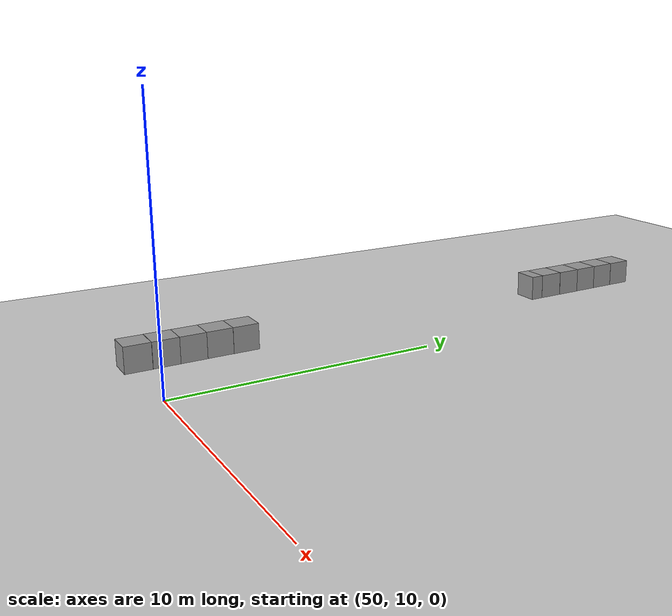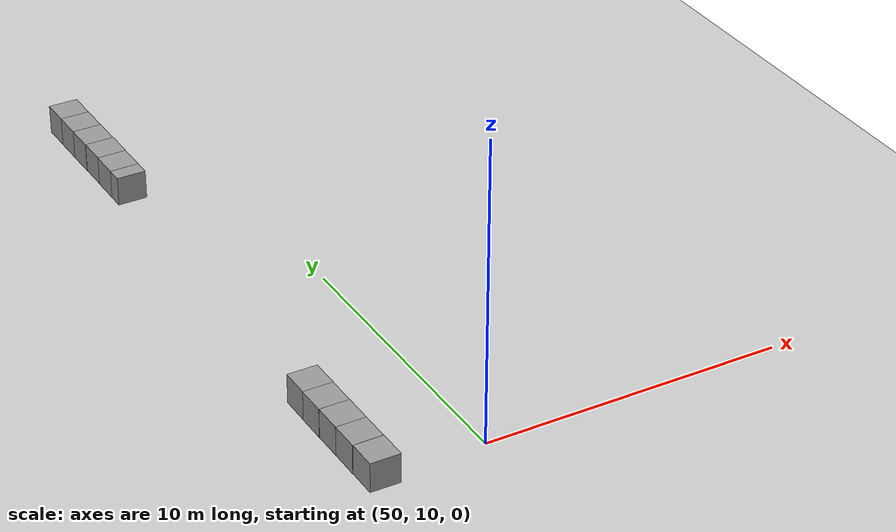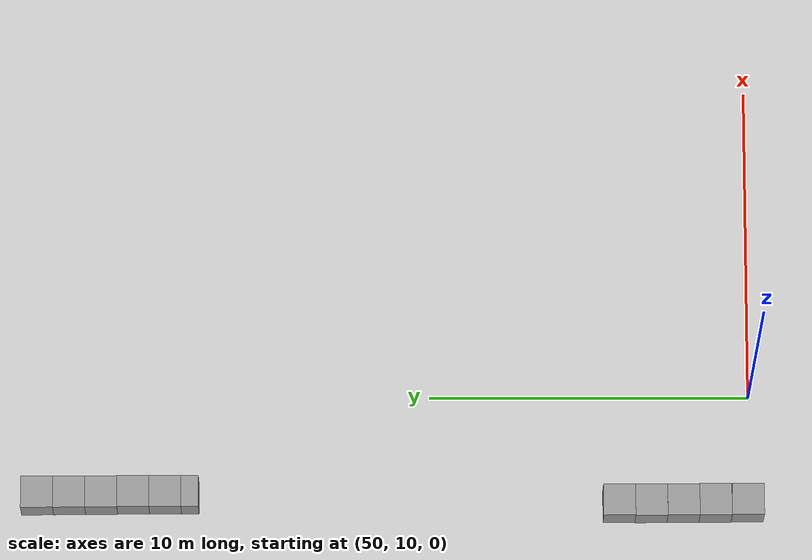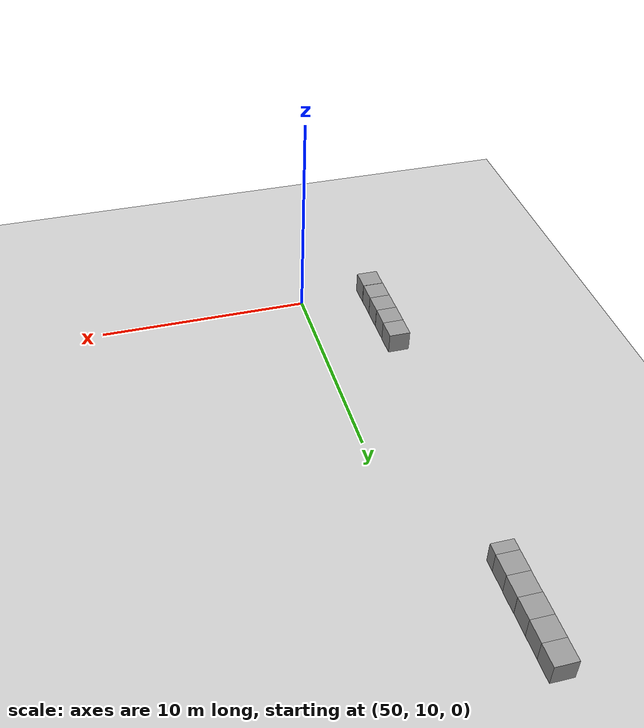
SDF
<sdf version="1.7">
 <world name="default">
  <model name="ground_plane">
   <static>1</static>
   <link name="link">
    <collision name="collision">
     <geometry><plane><normal>0 0 1</normal><size>100 100</size></plane></geometry>
     <surface>
      <contact><collide_bitmask>65535</collide_bitmask></contact>
      <friction><ode><mu>100</mu><mu2>50</mu2></ode></friction>
     </surface>
    </collision>
    <visual name="visual">
     <cast_shadows>0</cast_shadows>
     <geometry><plane><normal>0 0 1</normal><size>100 100</size></plane></geometry>
     <material>
      <script><uri>file://media/materials/scripts/gazebo.material</uri><name>Gazebo/Grey</name></script>
     </material>
    </visual>
   </link>
  </model>
  <model name="unit_box_13">
   <pose>46.717 32.2491 0.499995 0 1e-05 0.007913</pose>
   <link name="link">
    <inertial>
     <mass>1</mass>
     <inertia>
      <ixx>0.166667</ixx>
      <ixy>0</ixy>
      <ixz>0</ixz>
      <iyy>0.166667</iyy>
      <iyz>0</iyz>
      <izz>0.166667</izz>
     </inertia>
    </inertial>
    <collision name="collision"><geometry><box><size>1 1 1</size></box></geometry></collision>
    <visual name="visual">
     <geometry><box><size>1 1 1</size></box></geometry>
     <material>
      <script><name>Gazebo/Grey</name><uri>file://media/materials/scripts/gazebo.material</uri></script>
     </material>
    </visual>
   </link>
  </model>
  <model name="unit_box_14">
   <pose>46.7218 31.2491 0.5 0 -0 0.007911</pose>
   <link name="link">
    <inertial>
     <mass>1</mass>
     <inertia>
      <ixx>0.166667</ixx>
      <ixy>0</ixy>
      <ixz>0</ixz>
      <iyy>0.166667</iyy>
      <iyz>0</iyz>
      <izz>0.166667</izz>
     </inertia>
    </inertial>
    <collision name="collision"><geometry><box><size>1 1 1</size></box></geometry></collision>
    <visual name="visual">
     <geometry><box><size>1 1 1</size></box></geometry>
     <material>
      <script><name>Gazebo/Grey</name><uri>file://media/materials/scripts/gazebo.material</uri></script>
     </material>
    </visual>
   </link>
  </model>
  <model name="unit_box_15">
   <pose>46.7287 30.2491 0.5 0 -0 0.007911</pose>
   <link name="link">
    <inertial>
     <mass>1</mass>
     <inertia>
      <ixx>0.166667</ixx>
      <ixy>0</ixy>
      <ixz>0</ixz>
      <iyy>0.166667</iyy>
      <iyz>0</iyz>
      <izz>0.166667</izz>
     </inertia>
    </inertial>
    <collision name="collision"><geometry><box><size>1 1 1</size></box></geometry></collision>
    <visual name="visual">
     <geometry><box><size>1 1 1</size></box></geometry>
     <material>
      <script><name>Gazebo/Grey</name><uri>file://media/materials/scripts/gazebo.material</uri></script>
     </material>
    </visual>
   </link>
  </model>
  <model name="unit_box_16">
   <pose>46.7446 29.2492 0.499995 -0 1e-05 0.007912</pose>
   <link name="link">
    <inertial>
     <mass>1</mass>
     <inertia>
      <ixx>0.166667</ixx>
      <ixy>0</ixy>
      <ixz>0</ixz>
      <iyy>0.166667</iyy>
      <iyz>0</iyz>
      <izz>0.166667</izz>
     </inertia>
    </inertial>
    <collision name="collision"><geometry><box><size>1 1 1</size></box></geometry></collision>
    <visual name="visual">
     <geometry><box><size>1 1 1</size></box></geometry>
     <material>
      <script><name>Gazebo/Grey</name><uri>file://media/materials/scripts/gazebo.material</uri></script>
     </material>
    </visual>
   </link>
  </model>
  <model name="unit_box_17">
   <pose>46.7436 28.2492 0.499996 -5e-06 2e-06 0.007893</pose>
   <link name="link">
    <inertial>
     <mass>1</mass>
     <inertia>
      <ixx>0.166667</ixx>
      <ixy>0</ixy>
      <ixz>0</ixz>
      <iyy>0.166667</iyy>
      <iyz>0</iyz>
      <izz>0.166667</izz>
     </inertia>
    </inertial>
    <collision name="collision"><geometry><box><size>1 1 1</size></box></geometry></collision>
    <visual name="visual">
     <geometry><box><size>1 1 1</size></box></geometry>
     <material>
      <script><name>Gazebo/Grey</name><uri>file://media/materials/scripts/gazebo.material</uri></script>
     </material>
    </visual>
   </link>
  </model>
  <model name="unit_box_18">
   <pose>46.7467 27.4779 0.5 0 -0 0.007894</pose>
   <link name="link">
    <inertial>
     <mass>1</mass>
     <inertia>
      <ixx>0.166667</ixx>
      <ixy>0</ixy>
      <ixz>0</ixz>
      <iyy>0.166667</iyy>
      <iyz>0</iyz>
      <izz>0.166667</izz>
     </inertia>
    </inertial>
    <collision name="collision"><geometry><box><size>1 0.542564 1</size></box></geometry></collision>
    <visual name="visual">
     <geometry><box><size>1 0.542564 1</size></box></geometry>
     <material>
      <script><name>Gazebo/Grey</name><uri>file://media/materials/scripts/gazebo.material</uri></script>
     </material>
    </visual>
   </link>
  </model>
  <model name="unit_box_24">
   <pose>46.5053 10.072 0.5 0 -0 3e-06</pose>
   <link name="link">
    <inertial>
     <mass>1</mass>
     <inertia>
      <ixx>0.166667</ixx>
      <ixy>0</ixy>
      <ixz>0</ixz>
      <iyy>0.166667</iyy>
      <iyz>0</iyz>
      <izz>0.166667</izz>
     </inertia>
    </inertial>
    <collision name="collision"><geometry><box><size>1 1 1</size></box></geometry></collision>
    <visual name="visual">
     <geometry><box><size>1 1 1</size></box></geometry>
     <material>
      <script><name>Gazebo/Grey</name><uri>file://media/materials/scripts/gazebo.material</uri></script>
     </material>
    </visual>
   </link>
  </model>
  <model name="unit_box_25">
   <pose>46.4924 11.0799 0.5 0 -0 0.003433</pose>
   <link name="link">
    <inertial>
     <mass>1</mass>
     <inertia>
      <ixx>0.166667</ixx>
      <ixy>0</ixy>
      <ixz>0</ixz>
      <iyy>0.166667</iyy>
      <iyz>0</iyz>
      <izz>0.166667</izz>
     </inertia>
    </inertial>
    <collision name="collision"><geometry><box><size>1 1 1</size></box></geometry></collision>
    <visual name="visual">
     <geometry><box><size>1 1 1</size></box></geometry>
     <material>
      <script><name>Gazebo/Grey</name><uri>file://media/materials/scripts/gazebo.material</uri></script>
     </material>
    </visual>
   </link>
  </model>
  <model name="unit_box_26">
   <pose>46.4865 12.08 0.5 0 -0 0.003243</pose>
   <link name="link">
    <inertial>
     <mass>1</mass>
     <inertia>
      <ixx>0.166667</ixx>
      <ixy>0</ixy>
      <ixz>0</ixz>
      <iyy>0.166667</iyy>
      <iyz>0</iyz>
      <izz>0.166667</izz>
     </inertia>
    </inertial>
    <collision name="collision"><geometry><box><size>1 1 1</size></box></geometry></collision>
    <visual name="visual">
     <geometry><box><size>1 1 1</size></box></geometry>
     <material>
      <script><name>Gazebo/Grey</name><uri>file://media/materials/scripts/gazebo.material</uri></script>
     </material>
    </visual>
   </link>
  </model>
  <model name="unit_box_27">
   <pose>46.476 13.0803 0.5 0 -0 0.003111</pose>
   <link name="link">
    <inertial>
     <mass>1</mass>
     <inertia>
      <ixx>0.166667</ixx>
      <ixy>0</ixy>
      <ixz>0</ixz>
      <iyy>0.166667</iyy>
      <iyz>0</iyz>
      <izz>0.166667</izz>
     </inertia>
    </inertial>
    <collision name="collision"><geometry><box><size>1 1 1</size></box></geometry></collision>
    <visual name="visual">
     <geometry><box><size>1 1 1</size></box></geometry>
     <material>
      <script><name>Gazebo/Grey</name><uri>file://media/materials/scripts/gazebo.material</uri></script>
     </material>
    </visual>
   </link>
  </model>
  <model name="unit_box_28">
   <pose>46.4785 14.0803 0.5 0 -0 0.003107</pose>
   <link name="link">
    <inertial>
     <mass>1</mass>
     <inertia>
      <ixx>0.166667</ixx>
      <ixy>0</ixy>
      <ixz>0</ixz>
      <iyy>0.166667</iyy>
      <iyz>0</iyz>
      <izz>0.166667</izz>
     </inertia>
    </inertial>
    <collision name="collision"><geometry><box><size>1 1 1</size></box></geometry></collision>
    <visual name="visual">
     <geometry><box><size>1 1 1</size></box></geometry>
     <material>
      <script><name>Gazebo/Grey</name><uri>file://media/materials/scripts/gazebo.material</uri></script>
     </material>
    </visual>
   </link>
  </model>
 </world>
</sdf>
